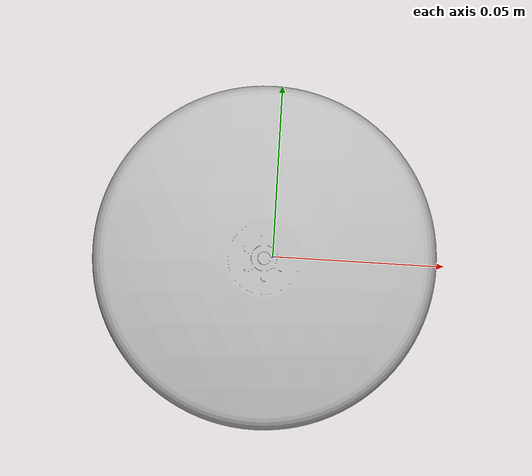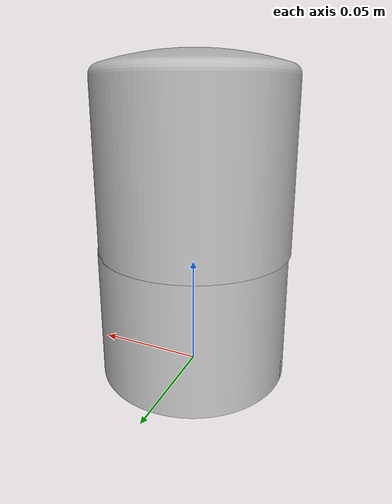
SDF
<?xml version="1.0" ?>
<sdf version="1.5">
  <model name="velodyne">
 <plugin name="velodyne_motor" filename="libplugin_joint_rotary.so">
    <velocity>0.0</velocity>
    <joint_name>velodyne::joint</joint_name>
    <topic_gazebo_name>motor_angle</topic_gazebo_name>
     </plugin>
    <link name="base">
      <pose>0 0 0.029335 0 0 0</pose>
      <inertial>
        <mass>1.2</mass>
        <inertia>
          <ixx>0.001087473</ixx>
          <iyy>0.001087473</iyy>
          <izz>0.001092437</izz>
          <ixy>0</ixy>
          <ixz>0</ixz>
          <iyz>0</iyz>
        </inertia>
      </inertial>
      <collision name="base_collision">
        <geometry>
          <cylinder>
            <radius>.04267</radius>
            <length>.05867</length>
          </cylinder>
        </geometry>
      </collision>
      <visual name="base_visual">
        <pose>0 0 -0.029335 0 0 0</pose>
        <geometry>
          <mesh>
            <uri>model://velodyne_hdl32/meshes/velodyne_base.dae</uri>
          </mesh>
        </geometry>
      </visual>
    </link>

    <link name="top">
      <pose>0 0 0.095455 0 0 0</pose>
      <inertial>
        <mass>0.1</mass>
        <inertia>
          <ixx>0.000090623</ixx>
          <iyy>0.000090623</iyy>
          <izz>0.000091036</izz>
          <ixy>0</ixy>
          <ixz>0</ixz>
          <iyz>0</iyz>
        </inertia>
      </inertial>
      <collision name="top_collision">
        <geometry>
          <cylinder>
            <radius>0.04267</radius>
            <length>0.07357</length>
          </cylinder>
        </geometry>
      </collision>
      <visual name="top_visual">
        <pose>0 0 -0.0376785 0 0 1.5707</pose>
        <geometry>
          <mesh>
            <uri>model://velodyne_hdl32/meshes/velodyne_top.dae</uri>
          </mesh>
        </geometry>
      </visual>

      <sensor type="ray" name="sensor">
        <pose>0 0 -0.004645 0 0 0</pose>
        <visualize>true</visualize>
        <update_rate>30</update_rate>
        <ray>
          <noise>
            <type>gaussian</type>
            <mean>0.0</mean>
            <stddev>0.001</stddev>
          </noise>

          <scan>
            <horizontal>
              <samples>1000</samples>
              <resolution>1</resolution>
              <min_angle>0.0</min_angle>
              <max_angle>6.28</max_angle>
            </horizontal>
            <vertical>
              <samples>32</samples>
              <resolution>1</resolution>
              <min_angle>-0.53529248</min_angle>
              <max_angle>0.18622663</max_angle>
            </vertical>
          </scan>

          <range>
            <min>0.1</min>
            <max>70</max>
            <resolution>0.0001</resolution>
          </range>
        </ray>
 <plugin name="velodyne_control" filename="libros_block_laser.so">
    <frame_name>laser</frame_name>
    <topic_name>scan</topic_name>
     </plugin>
      </sensor>
    </link>

    <joint type="revolute" name="joint">
      <pose>0 0 -0.036785 0 0 0</pose>
      <parent>base</parent>
      <child>top</child>
      <axis>
        <xyz>0 0 1</xyz>
        <limit>
          <lower>-10000000000000000</lower>
          <upper>10000000000000000</upper>
        </limit>
      </axis>
    </joint>

  </model>
</sdf>
